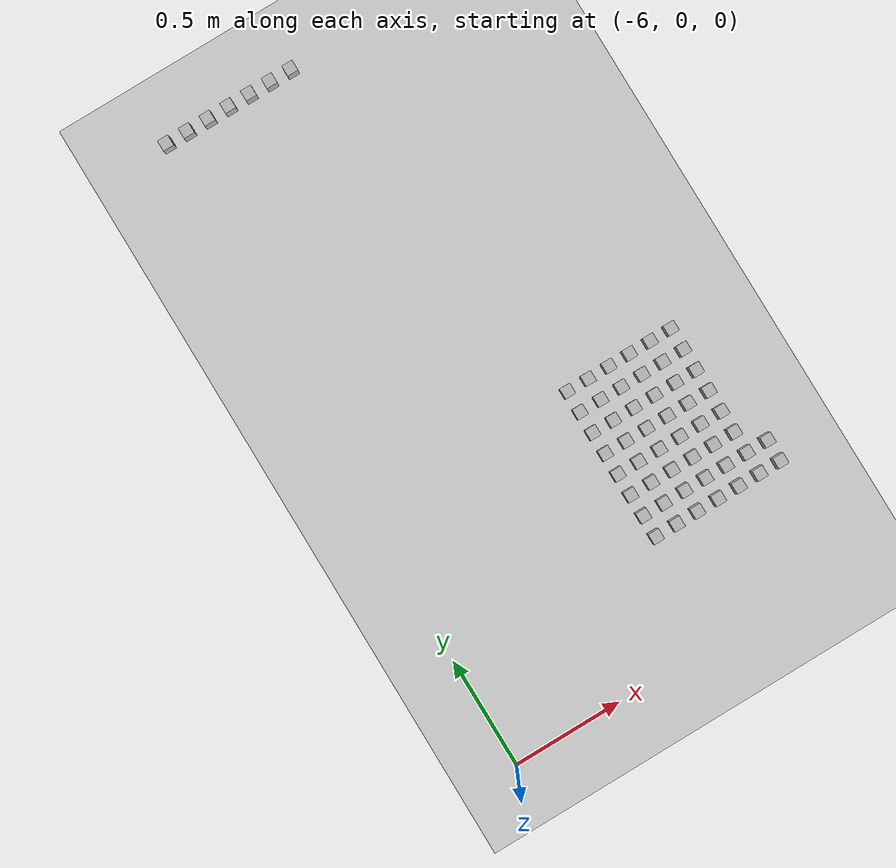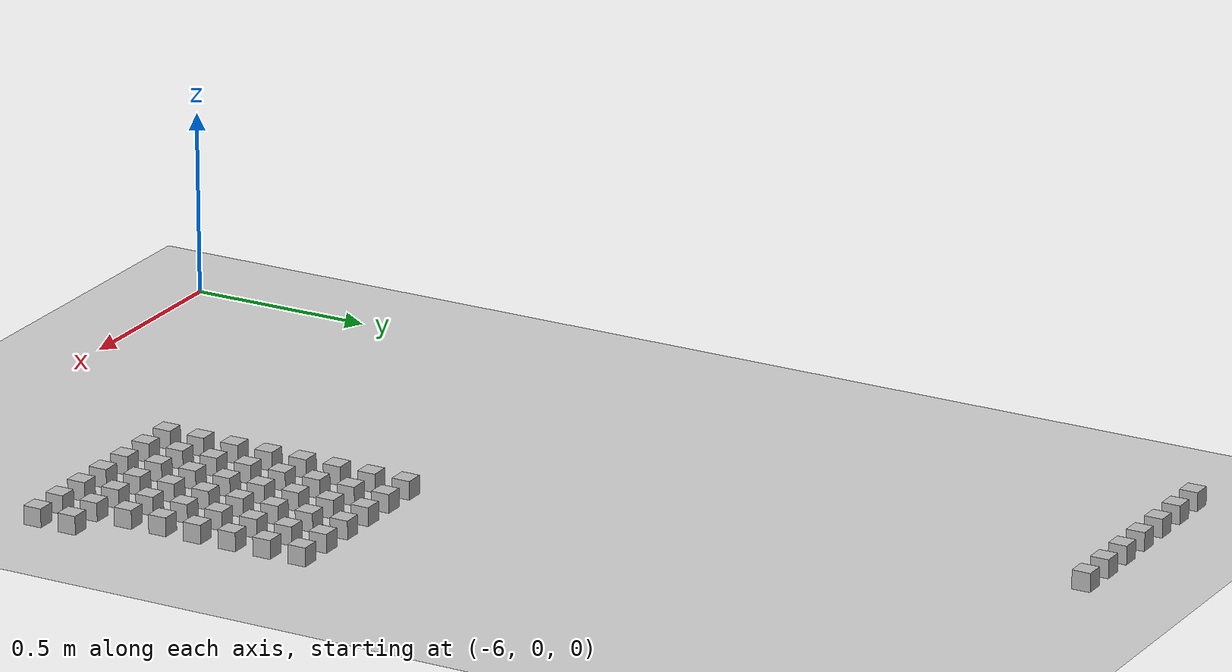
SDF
<sdf version="1.6">
 <world name="default">
  <model name="ground_plane">
   <static>1</static>
   <link name="link">
    <collision name="collision">
     <geometry><plane><normal>0 0 1</normal><size>100 100</size></plane></geometry>
     <surface><friction><ode><mu>100</mu><mu2>50</mu2></ode></friction></surface>
    </collision>
    <visual name="visual">
     <cast_shadows>0</cast_shadows>
     <geometry><plane><normal>0 0 1</normal><size>100 100</size></plane></geometry>
     <material>
      <script><uri>file://media/materials/scripts/gazebo.material</uri><name>Gazebo/Grey</name></script>
     </material>
    </visual>
   </link>
  </model>
  <model name="at0">
   <static>0</static>
   <link name="link">
    <inertial>
     <mass>0.01</mass>
     <inertia><ixx>4e-05</ixx><ixy>0</ixy><ixz>0</ixz><iyy>4e-05</iyy><iyz>0</iyz><izz>4e-05</izz></inertia>
    </inertial>
    <visual name="visual">
     <geometry><box><size>0.05 0.05 0.05</size></box></geometry>
     <material>
      <script>
       <uri>model://at0/materials/scripts</uri>
       <uri>model://at0/materials/textures</uri>
       <name>at0/Diffuse</name>
      </script>
     </material>
    </visual>
    <collision name="collision">
     <geometry><box><size>0.05 0.05 0.05</size></box></geometry>
     <surface><friction><ode><mu>0.8</mu><mu2>0.7</mu2></ode></friction></surface>
    </collision>
   </link>
   <pose>-5.01833 0.509652 0.025 0 -0 0</pose>
  </model>
  <model name="at1">
   <static>0</static>
   <link name="link">
    <inertial>
     <mass>0.01</mass>
     <inertia><ixx>4e-05</ixx><ixy>0</ixy><ixz>0</ixz><iyy>4e-05</iyy><iyz>0</iyz><izz>4e-05</izz></inertia>
    </inertial>
    <visual name="visual">
     <geometry><box><size>0.05 0.05 0.05</size></box></geometry>
     <material>
      <script>
       <uri>model://at0/materials/scripts</uri>
       <uri>model://at0/materials/textures</uri>
       <name>at0/Diffuse</name>
      </script>
     </material>
    </visual>
    <collision name="collision">
     <geometry><box><size>0.05 0.05 0.05</size></box></geometry>
     <surface><friction><ode><mu>0.8</mu><mu2>0.7</mu2></ode></friction></surface>
    </collision>
   </link>
   <pose>-4.91833 0.509652 0.025 0 -0 0</pose>
  </model>
  <model name="at2">
   <static>0</static>
   <link name="link">
    <inertial>
     <mass>0.01</mass>
     <inertia><ixx>4e-05</ixx><ixy>0</ixy><ixz>0</ixz><iyy>4e-05</iyy><iyz>0</iyz><izz>4e-05</izz></inertia>
    </inertial>
    <visual name="visual">
     <geometry><box><size>0.05 0.05 0.05</size></box></geometry>
     <material>
      <script>
       <uri>model://at0/materials/scripts</uri>
       <uri>model://at0/materials/textures</uri>
       <name>at0/Diffuse</name>
      </script>
     </material>
    </visual>
    <collision name="collision">
     <geometry><box><size>0.05 0.05 0.05</size></box></geometry>
     <surface><friction><ode><mu>0.8</mu><mu2>0.7</mu2></ode></friction></surface>
    </collision>
   </link>
   <pose>-4.81833 0.509652 0.025 0 -0 0</pose>
  </model>
  <model name="at3">
   <static>0</static>
   <link name="link">
    <inertial>
     <mass>0.01</mass>
     <inertia><ixx>4e-05</ixx><ixy>0</ixy><ixz>0</ixz><iyy>4e-05</iyy><iyz>0</iyz><izz>4e-05</izz></inertia>
    </inertial>
    <visual name="visual">
     <geometry><box><size>0.05 0.05 0.05</size></box></geometry>
     <material>
      <script>
       <uri>model://at0/materials/scripts</uri>
       <uri>model://at0/materials/textures</uri>
       <name>at0/Diffuse</name>
      </script>
     </material>
    </visual>
    <collision name="collision">
     <geometry><box><size>0.05 0.05 0.05</size></box></geometry>
     <surface><friction><ode><mu>0.8</mu><mu2>0.7</mu2></ode></friction></surface>
    </collision>
   </link>
   <pose>-4.71833 0.509652 0.025 0 -0 0</pose>
  </model>
  <model name="at4">
   <static>0</static>
   <link name="link">
    <inertial>
     <mass>0.01</mass>
     <inertia><ixx>4e-05</ixx><ixy>0</ixy><ixz>0</ixz><iyy>4e-05</iyy><iyz>0</iyz><izz>4e-05</izz></inertia>
    </inertial>
    <visual name="visual">
     <geometry><box><size>0.05 0.05 0.05</size></box></geometry>
     <material>
      <script>
       <uri>model://at0/materials/scripts</uri>
       <uri>model://at0/materials/textures</uri>
       <name>at0/Diffuse</name>
      </script>
     </material>
    </visual>
    <collision name="collision">
     <geometry><box><size>0.05 0.05 0.05</size></box></geometry>
     <surface><friction><ode><mu>0.8</mu><mu2>0.7</mu2></ode></friction></surface>
    </collision>
   </link>
   <pose>-4.61833 0.509652 0.025 0 -0 0</pose>
  </model>
  <model name="at5">
   <static>0</static>
   <link name="link">
    <inertial>
     <mass>0.01</mass>
     <inertia><ixx>4e-05</ixx><ixy>0</ixy><ixz>0</ixz><iyy>4e-05</iyy><iyz>0</iyz><izz>4e-05</izz></inertia>
    </inertial>
    <visual name="visual">
     <geometry><box><size>0.05 0.05 0.05</size></box></geometry>
     <material>
      <script>
       <uri>model://at0/materials/scripts</uri>
       <uri>model://at0/materials/textures</uri>
       <name>at0/Diffuse</name>
      </script>
     </material>
    </visual>
    <collision name="collision">
     <geometry><box><size>0.05 0.05 0.05</size></box></geometry>
     <surface><friction><ode><mu>0.8</mu><mu2>0.7</mu2></ode></friction></surface>
    </collision>
   </link>
   <pose>-4.51833 0.509652 0.025 0 -0 0</pose>
  </model>
  <model name="at6">
   <static>0</static>
   <link name="link">
    <inertial>
     <mass>0.01</mass>
     <inertia><ixx>4e-05</ixx><ixy>0</ixy><ixz>0</ixz><iyy>4e-05</iyy><iyz>0</iyz><izz>4e-05</izz></inertia>
    </inertial>
    <visual name="visual">
     <geometry><box><size>0.05 0.05 0.05</size></box></geometry>
     <material>
      <script>
       <uri>model://at0/materials/scripts</uri>
       <uri>model://at0/materials/textures</uri>
       <name>at0/Diffuse</name>
      </script>
     </material>
    </visual>
    <collision name="collision">
     <geometry><box><size>0.05 0.05 0.05</size></box></geometry>
     <surface><friction><ode><mu>0.8</mu><mu2>0.7</mu2></ode></friction></surface>
    </collision>
   </link>
   <pose>-4.41833 0.509652 0.025 0 -0 0</pose>
  </model>
  <model name="at8">
   <static>0</static>
   <link name="link">
    <inertial>
     <mass>0.01</mass>
     <inertia><ixx>4e-05</ixx><ixy>0</ixy><ixz>0</ixz><iyy>4e-05</iyy><iyz>0</iyz><izz>4e-05</izz></inertia>
    </inertial>
    <visual name="visual">
     <geometry><box><size>0.05 0.05 0.05</size></box></geometry>
     <material>
      <script>
       <uri>model://at0/materials/scripts</uri>
       <uri>model://at0/materials/textures</uri>
       <name>at0/Diffuse</name>
      </script>
     </material>
    </visual>
    <collision name="collision">
     <geometry><box><size>0.05 0.05 0.05</size></box></geometry>
     <surface><friction><ode><mu>0.8</mu><mu2>0.7</mu2></ode></friction></surface>
    </collision>
   </link>
   <pose>-5.01833 0.609652 0.025 0 -0 0</pose>
  </model>
  <model name="at9">
   <static>0</static>
   <link name="link">
    <inertial>
     <mass>0.01</mass>
     <inertia><ixx>4e-05</ixx><ixy>0</ixy><ixz>0</ixz><iyy>4e-05</iyy><iyz>0</iyz><izz>4e-05</izz></inertia>
    </inertial>
    <visual name="visual">
     <geometry><box><size>0.05 0.05 0.05</size></box></geometry>
     <material>
      <script>
       <uri>model://at0/materials/scripts</uri>
       <uri>model://at0/materials/textures</uri>
       <name>at0/Diffuse</name>
      </script>
     </material>
    </visual>
    <collision name="collision">
     <geometry><box><size>0.05 0.05 0.05</size></box></geometry>
     <surface><friction><ode><mu>0.8</mu><mu2>0.7</mu2></ode></friction></surface>
    </collision>
   </link>
   <pose>-4.91833 0.609652 0.025 0 -0 0</pose>
  </model>
  <model name="at10">
   <static>0</static>
   <link name="link">
    <inertial>
     <mass>0.01</mass>
     <inertia><ixx>4e-05</ixx><ixy>0</ixy><ixz>0</ixz><iyy>4e-05</iyy><iyz>0</iyz><izz>4e-05</izz></inertia>
    </inertial>
    <visual name="visual">
     <geometry><box><size>0.05 0.05 0.05</size></box></geometry>
     <material>
      <script>
       <uri>model://at0/materials/scripts</uri>
       <uri>model://at0/materials/textures</uri>
       <name>at0/Diffuse</name>
      </script>
     </material>
    </visual>
    <collision name="collision">
     <geometry><box><size>0.05 0.05 0.05</size></box></geometry>
     <surface><friction><ode><mu>0.8</mu><mu2>0.7</mu2></ode></friction></surface>
    </collision>
   </link>
   <pose>-4.81833 0.609652 0.025 0 -0 0</pose>
  </model>
  <model name="at11">
   <static>0</static>
   <link name="link">
    <inertial>
     <mass>0.01</mass>
     <inertia><ixx>4e-05</ixx><ixy>0</ixy><ixz>0</ixz><iyy>4e-05</iyy><iyz>0</iyz><izz>4e-05</izz></inertia>
    </inertial>
    <visual name="visual">
     <geometry><box><size>0.05 0.05 0.05</size></box></geometry>
     <material>
      <script>
       <uri>model://at0/materials/scripts</uri>
       <uri>model://at0/materials/textures</uri>
       <name>at0/Diffuse</name>
      </script>
     </material>
    </visual>
    <collision name="collision">
     <geometry><box><size>0.05 0.05 0.05</size></box></geometry>
     <surface><friction><ode><mu>0.8</mu><mu2>0.7</mu2></ode></friction></surface>
    </collision>
   </link>
   <pose>-4.71833 0.609652 0.025 0 -0 0</pose>
  </model>
  <model name="at12">
   <static>0</static>
   <link name="link">
    <inertial>
     <mass>0.01</mass>
     <inertia><ixx>4e-05</ixx><ixy>0</ixy><ixz>0</ixz><iyy>4e-05</iyy><iyz>0</iyz><izz>4e-05</izz></inertia>
    </inertial>
    <visual name="visual">
     <geometry><box><size>0.05 0.05 0.05</size></box></geometry>
     <material>
      <script>
       <uri>model://at0/materials/scripts</uri>
       <uri>model://at0/materials/textures</uri>
       <name>at0/Diffuse</name>
      </script>
     </material>
    </visual>
    <collision name="collision">
     <geometry><box><size>0.05 0.05 0.05</size></box></geometry>
     <surface><friction><ode><mu>0.8</mu><mu2>0.7</mu2></ode></friction></surface>
    </collision>
   </link>
   <pose>-4.61833 0.609652 0.025 0 -0 0</pose>
  </model>
  <model name="at13">
   <static>0</static>
   <link name="link">
    <inertial>
     <mass>0.01</mass>
     <inertia><ixx>4e-05</ixx><ixy>0</ixy><ixz>0</ixz><iyy>4e-05</iyy><iyz>0</iyz><izz>4e-05</izz></inertia>
    </inertial>
    <visual name="visual">
     <geometry><box><size>0.05 0.05 0.05</size></box></geometry>
     <material>
      <script>
       <uri>model://at0/materials/scripts</uri>
       <uri>model://at0/materials/textures</uri>
       <name>at0/Diffuse</name>
      </script>
     </material>
    </visual>
    <collision name="collision">
     <geometry><box><size>0.05 0.05 0.05</size></box></geometry>
     <surface><friction><ode><mu>0.8</mu><mu2>0.7</mu2></ode></friction></surface>
    </collision>
   </link>
   <pose>-4.51833 0.609652 0.025 0 -0 0</pose>
  </model>
  <model name="at14">
   <static>0</static>
   <link name="link">
    <inertial>
     <mass>0.01</mass>
     <inertia><ixx>4e-05</ixx><ixy>0</ixy><ixz>0</ixz><iyy>4e-05</iyy><iyz>0</iyz><izz>4e-05</izz></inertia>
    </inertial>
    <visual name="visual">
     <geometry><box><size>0.05 0.05 0.05</size></box></geometry>
     <material>
      <script>
       <uri>model://at0/materials/scripts</uri>
       <uri>model://at0/materials/textures</uri>
       <name>at0/Diffuse</name>
      </script>
     </material>
    </visual>
    <collision name="collision">
     <geometry><box><size>0.05 0.05 0.05</size></box></geometry>
     <surface><friction><ode><mu>0.8</mu><mu2>0.7</mu2></ode></friction></surface>
    </collision>
   </link>
   <pose>-4.41833 0.609652 0.025 0 -0 0</pose>
  </model>
  <model name="at16">
   <static>0</static>
   <link name="link">
    <inertial>
     <mass>0.01</mass>
     <inertia><ixx>4e-05</ixx><ixy>0</ixy><ixz>0</ixz><iyy>4e-05</iyy><iyz>0</iyz><izz>4e-05</izz></inertia>
    </inertial>
    <visual name="visual">
     <geometry><box><size>0.05 0.05 0.05</size></box></geometry>
     <material>
      <script>
       <uri>model://at0/materials/scripts</uri>
       <uri>model://at0/materials/textures</uri>
       <name>at0/Diffuse</name>
      </script>
     </material>
    </visual>
    <collision name="collision">
     <geometry><box><size>0.05 0.05 0.05</size></box></geometry>
     <surface><friction><ode><mu>0.8</mu><mu2>0.7</mu2></ode></friction></surface>
    </collision>
   </link>
   <pose>-5.01833 0.709652 0.025 0 -0 0</pose>
  </model>
  <model name="at17">
   <static>0</static>
   <link name="link">
    <inertial>
     <mass>0.01</mass>
     <inertia><ixx>4e-05</ixx><ixy>0</ixy><ixz>0</ixz><iyy>4e-05</iyy><iyz>0</iyz><izz>4e-05</izz></inertia>
    </inertial>
    <visual name="visual">
     <geometry><box><size>0.05 0.05 0.05</size></box></geometry>
     <material>
      <script>
       <uri>model://at0/materials/scripts</uri>
       <uri>model://at0/materials/textures</uri>
       <name>at0/Diffuse</name>
      </script>
     </material>
    </visual>
    <collision name="collision">
     <geometry><box><size>0.05 0.05 0.05</size></box></geometry>
     <surface><friction><ode><mu>0.8</mu><mu2>0.7</mu2></ode></friction></surface>
    </collision>
   </link>
   <pose>-4.91833 0.709652 0.025 0 -0 0</pose>
  </model>
  <model name="at18">
   <static>0</static>
   <link name="link">
    <inertial>
     <mass>0.01</mass>
     <inertia><ixx>4e-05</ixx><ixy>0</ixy><ixz>0</ixz><iyy>4e-05</iyy><iyz>0</iyz><izz>4e-05</izz></inertia>
    </inertial>
    <visual name="visual">
     <geometry><box><size>0.05 0.05 0.05</size></box></geometry>
     <material>
      <script>
       <uri>model://at0/materials/scripts</uri>
       <uri>model://at0/materials/textures</uri>
       <name>at0/Diffuse</name>
      </script>
     </material>
    </visual>
    <collision name="collision">
     <geometry><box><size>0.05 0.05 0.05</size></box></geometry>
     <surface><friction><ode><mu>0.8</mu><mu2>0.7</mu2></ode></friction></surface>
    </collision>
   </link>
   <pose>-4.81833 0.709652 0.025 0 -0 0</pose>
  </model>
  <model name="at19">
   <static>0</static>
   <link name="link">
    <inertial>
     <mass>0.01</mass>
     <inertia><ixx>4e-05</ixx><ixy>0</ixy><ixz>0</ixz><iyy>4e-05</iyy><iyz>0</iyz><izz>4e-05</izz></inertia>
    </inertial>
    <visual name="visual">
     <geometry><box><size>0.05 0.05 0.05</size></box></geometry>
     <material>
      <script>
       <uri>model://at0/materials/scripts</uri>
       <uri>model://at0/materials/textures</uri>
       <name>at0/Diffuse</name>
      </script>
     </material>
    </visual>
    <collision name="collision">
     <geometry><box><size>0.05 0.05 0.05</size></box></geometry>
     <surface><friction><ode><mu>0.8</mu><mu2>0.7</mu2></ode></friction></surface>
    </collision>
   </link>
   <pose>-4.71833 0.709652 0.025 0 -0 0</pose>
  </model>
  <model name="at20">
   <static>0</static>
   <link name="link">
    <inertial>
     <mass>0.01</mass>
     <inertia><ixx>4e-05</ixx><ixy>0</ixy><ixz>0</ixz><iyy>4e-05</iyy><iyz>0</iyz><izz>4e-05</izz></inertia>
    </inertial>
    <visual name="visual">
     <geometry><box><size>0.05 0.05 0.05</size></box></geometry>
     <material>
      <script>
       <uri>model://at0/materials/scripts</uri>
       <uri>model://at0/materials/textures</uri>
       <name>at0/Diffuse</name>
      </script>
     </material>
    </visual>
    <collision name="collision">
     <geometry><box><size>0.05 0.05 0.05</size></box></geometry>
     <surface><friction><ode><mu>0.8</mu><mu2>0.7</mu2></ode></friction></surface>
    </collision>
   </link>
   <pose>-4.61833 0.709652 0.025 0 -0 0</pose>
  </model>
  <model name="at21">
   <static>0</static>
   <link name="link">
    <inertial>
     <mass>0.01</mass>
     <inertia><ixx>4e-05</ixx><ixy>0</ixy><ixz>0</ixz><iyy>4e-05</iyy><iyz>0</iyz><izz>4e-05</izz></inertia>
    </inertial>
    <visual name="visual">
     <geometry><box><size>0.05 0.05 0.05</size></box></geometry>
     <material>
      <script>
       <uri>model://at0/materials/scripts</uri>
       <uri>model://at0/materials/textures</uri>
       <name>at0/Diffuse</name>
      </script>
     </material>
    </visual>
    <collision name="collision">
     <geometry><box><size>0.05 0.05 0.05</size></box></geometry>
     <surface><friction><ode><mu>0.8</mu><mu2>0.7</mu2></ode></friction></surface>
    </collision>
   </link>
   <pose>-4.51833 0.709652 0.025 0 -0 0</pose>
  </model>
  <model name="at24">
   <static>0</static>
   <link name="link">
    <inertial>
     <mass>0.01</mass>
     <inertia><ixx>4e-05</ixx><ixy>0</ixy><ixz>0</ixz><iyy>4e-05</iyy><iyz>0</iyz><izz>4e-05</izz></inertia>
    </inertial>
    <visual name="visual">
     <geometry><box><size>0.05 0.05 0.05</size></box></geometry>
     <material>
      <script>
       <uri>model://at0/materials/scripts</uri>
       <uri>model://at0/materials/textures</uri>
       <name>at0/Diffuse</name>
      </script>
     </material>
    </visual>
    <collision name="collision">
     <geometry><box><size>0.05 0.05 0.05</size></box></geometry>
     <surface><friction><ode><mu>0.8</mu><mu2>0.7</mu2></ode></friction></surface>
    </collision>
   </link>
   <pose>-5.01833 0.809652 0.025 0 -0 0</pose>
  </model>
  <model name="at25">
   <static>0</static>
   <link name="link">
    <inertial>
     <mass>0.01</mass>
     <inertia><ixx>4e-05</ixx><ixy>0</ixy><ixz>0</ixz><iyy>4e-05</iyy><iyz>0</iyz><izz>4e-05</izz></inertia>
    </inertial>
    <visual name="visual">
     <geometry><box><size>0.05 0.05 0.05</size></box></geometry>
     <material>
      <script>
       <uri>model://at0/materials/scripts</uri>
       <uri>model://at0/materials/textures</uri>
       <name>at0/Diffuse</name>
      </script>
     </material>
    </visual>
    <collision name="collision">
     <geometry><box><size>0.05 0.05 0.05</size></box></geometry>
     <surface><friction><ode><mu>0.8</mu><mu2>0.7</mu2></ode></friction></surface>
    </collision>
   </link>
   <pose>-4.91833 0.809652 0.025 0 -0 0</pose>
  </model>
  <model name="at26">
   <static>0</static>
   <link name="link">
    <inertial>
     <mass>0.01</mass>
     <inertia><ixx>4e-05</ixx><ixy>0</ixy><ixz>0</ixz><iyy>4e-05</iyy><iyz>0</iyz><izz>4e-05</izz></inertia>
    </inertial>
    <visual name="visual">
     <geometry><box><size>0.05 0.05 0.05</size></box></geometry>
     <material>
      <script>
       <uri>model://at0/materials/scripts</uri>
       <uri>model://at0/materials/textures</uri>
       <name>at0/Diffuse</name>
      </script>
     </material>
    </visual>
    <collision name="collision">
     <geometry><box><size>0.05 0.05 0.05</size></box></geometry>
     <surface><friction><ode><mu>0.8</mu><mu2>0.7</mu2></ode></friction></surface>
    </collision>
   </link>
   <pose>-4.81833 0.809652 0.025 0 -0 0</pose>
  </model>
  <model name="at27">
   <static>0</static>
   <link name="link">
    <inertial>
     <mass>0.01</mass>
     <inertia><ixx>4e-05</ixx><ixy>0</ixy><ixz>0</ixz><iyy>4e-05</iyy><iyz>0</iyz><izz>4e-05</izz></inertia>
    </inertial>
    <visual name="visual">
     <geometry><box><size>0.05 0.05 0.05</size></box></geometry>
     <material>
      <script>
       <uri>model://at0/materials/scripts</uri>
       <uri>model://at0/materials/textures</uri>
       <name>at0/Diffuse</name>
      </script>
     </material>
    </visual>
    <collision name="collision">
     <geometry><box><size>0.05 0.05 0.05</size></box></geometry>
     <surface><friction><ode><mu>0.8</mu><mu2>0.7</mu2></ode></friction></surface>
    </collision>
   </link>
   <pose>-4.71833 0.809652 0.025 0 -0 0</pose>
  </model>
  <model name="at28">
   <static>0</static>
   <link name="link">
    <inertial>
     <mass>0.01</mass>
     <inertia><ixx>4e-05</ixx><ixy>0</ixy><ixz>0</ixz><iyy>4e-05</iyy><iyz>0</iyz><izz>4e-05</izz></inertia>
    </inertial>
    <visual name="visual">
     <geometry><box><size>0.05 0.05 0.05</size></box></geometry>
     <material>
      <script>
       <uri>model://at0/materials/scripts</uri>
       <uri>model://at0/materials/textures</uri>
       <name>at0/Diffuse</name>
      </script>
     </material>
    </visual>
    <collision name="collision">
     <geometry><box><size>0.05 0.05 0.05</size></box></geometry>
     <surface><friction><ode><mu>0.8</mu><mu2>0.7</mu2></ode></friction></surface>
    </collision>
   </link>
   <pose>-4.61833 0.809652 0.025 0 -0 0</pose>
  </model>
  <model name="at29">
   <static>0</static>
   <link name="link">
    <inertial>
     <mass>0.01</mass>
     <inertia><ixx>4e-05</ixx><ixy>0</ixy><ixz>0</ixz><iyy>4e-05</iyy><iyz>0</iyz><izz>4e-05</izz></inertia>
    </inertial>
    <visual name="visual">
     <geometry><box><size>0.05 0.05 0.05</size></box></geometry>
     <material>
      <script>
       <uri>model://at0/materials/scripts</uri>
       <uri>model://at0/materials/textures</uri>
       <name>at0/Diffuse</name>
      </script>
     </material>
    </visual>
    <collision name="collision">
     <geometry><box><size>0.05 0.05 0.05</size></box></geometry>
     <surface><friction><ode><mu>0.8</mu><mu2>0.7</mu2></ode></friction></surface>
    </collision>
   </link>
   <pose>-4.51833 0.809652 0.025 0 -0 0</pose>
  </model>
  <model name="at32">
   <static>0</static>
   <link name="link">
    <inertial>
     <mass>0.01</mass>
     <inertia><ixx>4e-05</ixx><ixy>0</ixy><ixz>0</ixz><iyy>4e-05</iyy><iyz>0</iyz><izz>4e-05</izz></inertia>
    </inertial>
    <visual name="visual">
     <geometry><box><size>0.05 0.05 0.05</size></box></geometry>
     <material>
      <script>
       <uri>model://at0/materials/scripts</uri>
       <uri>model://at0/materials/textures</uri>
       <name>at0/Diffuse</name>
      </script>
     </material>
    </visual>
    <collision name="collision">
     <geometry><box><size>0.05 0.05 0.05</size></box></geometry>
     <surface><friction><ode><mu>0.8</mu><mu2>0.7</mu2></ode></friction></surface>
    </collision>
   </link>
   <pose>-5.01833 0.909652 0.025 0 -0 0</pose>
  </model>
  <model name="at33">
   <static>0</static>
   <link name="link">
    <inertial>
     <mass>0.01</mass>
     <inertia><ixx>4e-05</ixx><ixy>0</ixy><ixz>0</ixz><iyy>4e-05</iyy><iyz>0</iyz><izz>4e-05</izz></inertia>
    </inertial>
    <visual name="visual">
     <geometry><box><size>0.05 0.05 0.05</size></box></geometry>
     <material>
      <script>
       <uri>model://at0/materials/scripts</uri>
       <uri>model://at0/materials/textures</uri>
       <name>at0/Diffuse</name>
      </script>
     </material>
    </visual>
    <collision name="collision">
     <geometry><box><size>0.05 0.05 0.05</size></box></geometry>
     <surface><friction><ode><mu>0.8</mu><mu2>0.7</mu2></ode></friction></surface>
    </collision>
   </link>
   <pose>-4.91833 0.909652 0.025 0 -0 0</pose>
  </model>
  <model name="at34">
   <static>0</static>
   <link name="link">
    <inertial>
     <mass>0.01</mass>
     <inertia><ixx>4e-05</ixx><ixy>0</ixy><ixz>0</ixz><iyy>4e-05</iyy><iyz>0</iyz><izz>4e-05</izz></inertia>
    </inertial>
    <visual name="visual">
     <geometry><box><size>0.05 0.05 0.05</size></box></geometry>
     <material>
      <script>
       <uri>model://at0/materials/scripts</uri>
       <uri>model://at0/materials/textures</uri>
       <name>at0/Diffuse</name>
      </script>
     </material>
    </visual>
    <collision name="collision">
     <geometry><box><size>0.05 0.05 0.05</size></box></geometry>
     <surface><friction><ode><mu>0.8</mu><mu2>0.7</mu2></ode></friction></surface>
    </collision>
   </link>
   <pose>-4.81833 0.909652 0.025 0 -0 0</pose>
  </model>
  <model name="at35">
   <static>0</static>
   <link name="link">
    <inertial>
     <mass>0.01</mass>
     <inertia><ixx>4e-05</ixx><ixy>0</ixy><ixz>0</ixz><iyy>4e-05</iyy><iyz>0</iyz><izz>4e-05</izz></inertia>
    </inertial>
    <visual name="visual">
     <geometry><box><size>0.05 0.05 0.05</size></box></geometry>
     <material>
      <script>
       <uri>model://at0/materials/scripts</uri>
       <uri>model://at0/materials/textures</uri>
       <name>at0/Diffuse</name>
      </script>
     </material>
    </visual>
    <collision name="collision">
     <geometry><box><size>0.05 0.05 0.05</size></box></geometry>
     <surface><friction><ode><mu>0.8</mu><mu2>0.7</mu2></ode></friction></surface>
    </collision>
   </link>
   <pose>-4.71833 0.909652 0.025 0 -0 0</pose>
  </model>
  <model name="at36">
   <static>0</static>
   <link name="link">
    <inertial>
     <mass>0.01</mass>
     <inertia><ixx>4e-05</ixx><ixy>0</ixy><ixz>0</ixz><iyy>4e-05</iyy><iyz>0</iyz><izz>4e-05</izz></inertia>
    </inertial>
    <visual name="visual">
     <geometry><box><size>0.05 0.05 0.05</size></box></geometry>
     <material>
      <script>
       <uri>model://at0/materials/scripts</uri>
       <uri>model://at0/materials/textures</uri>
       <name>at0/Diffuse</name>
      </script>
     </material>
    </visual>
    <collision name="collision">
     <geometry><box><size>0.05 0.05 0.05</size></box></geometry>
     <surface><friction><ode><mu>0.8</mu><mu2>0.7</mu2></ode></friction></surface>
    </collision>
   </link>
   <pose>-4.61833 0.909652 0.025 0 -0 0</pose>
  </model>
  <model name="at37">
   <static>0</static>
   <link name="link">
    <inertial>
     <mass>0.01</mass>
     <inertia><ixx>4e-05</ixx><ixy>0</ixy><ixz>0</ixz><iyy>4e-05</iyy><iyz>0</iyz><izz>4e-05</izz></inertia>
    </inertial>
    <visual name="visual">
     <geometry><box><size>0.05 0.05 0.05</size></box></geometry>
     <material>
      <script>
       <uri>model://at0/materials/scripts</uri>
       <uri>model://at0/materials/textures</uri>
       <name>at0/Diffuse</name>
      </script>
     </material>
    </visual>
    <collision name="collision">
     <geometry><box><size>0.05 0.05 0.05</size></box></geometry>
     <surface><friction><ode><mu>0.8</mu><mu2>0.7</mu2></ode></friction></surface>
    </collision>
   </link>
   <pose>-4.51833 0.909652 0.025 0 -0 0</pose>
  </model>
  <model name="at40">
   <static>0</static>
   <link name="link">
    <inertial>
     <mass>0.01</mass>
     <inertia><ixx>4e-05</ixx><ixy>0</ixy><ixz>0</ixz><iyy>4e-05</iyy><iyz>0</iyz><izz>4e-05</izz></inertia>
    </inertial>
    <visual name="visual">
     <geometry><box><size>0.05 0.05 0.05</size></box></geometry>
     <material>
      <script>
       <uri>model://at0/materials/scripts</uri>
       <uri>model://at0/materials/textures</uri>
       <name>at0/Diffuse</name>
      </script>
     </material>
    </visual>
    <collision name="collision">
     <geometry><box><size>0.05 0.05 0.05</size></box></geometry>
     <surface><friction><ode><mu>0.8</mu><mu2>0.7</mu2></ode></friction></surface>
    </collision>
   </link>
   <pose>-5.01833 1.00965 0.025 0 -0 0</pose>
  </model>
  <model name="at41">
   <static>0</static>
   <link name="link">
    <inertial>
     <mass>0.01</mass>
     <inertia><ixx>4e-05</ixx><ixy>0</ixy><ixz>0</ixz><iyy>4e-05</iyy><iyz>0</iyz><izz>4e-05</izz></inertia>
    </inertial>
    <visual name="visual">
     <geometry><box><size>0.05 0.05 0.05</size></box></geometry>
     <material>
      <script>
       <uri>model://at0/materials/scripts</uri>
       <uri>model://at0/materials/textures</uri>
       <name>at0/Diffuse</name>
      </script>
     </material>
    </visual>
    <collision name="collision">
     <geometry><box><size>0.05 0.05 0.05</size></box></geometry>
     <surface><friction><ode><mu>0.8</mu><mu2>0.7</mu2></ode></friction></surface>
    </collision>
   </link>
   <pose>-4.91833 1.00965 0.025 0 -0 0</pose>
  </model>
  <model name="at42">
   <static>0</static>
   <link name="link">
    <inertial>
     <mass>0.01</mass>
     <inertia><ixx>4e-05</ixx><ixy>0</ixy><ixz>0</ixz><iyy>4e-05</iyy><iyz>0</iyz><izz>4e-05</izz></inertia>
    </inertial>
    <visual name="visual">
     <geometry><box><size>0.05 0.05 0.05</size></box></geometry>
     <material>
      <script>
       <uri>model://at0/materials/scripts</uri>
       <uri>model://at0/materials/textures</uri>
       <name>at0/Diffuse</name>
      </script>
     </material>
    </visual>
    <collision name="collision">
     <geometry><box><size>0.05 0.05 0.05</size></box></geometry>
     <surface><friction><ode><mu>0.8</mu><mu2>0.7</mu2></ode></friction></surface>
    </collision>
   </link>
   <pose>-4.81833 1.00965 0.025 0 -0 0</pose>
  </model>
  <model name="at43">
   <static>0</static>
   <link name="link">
    <inertial>
     <mass>0.01</mass>
     <inertia><ixx>4e-05</ixx><ixy>0</ixy><ixz>0</ixz><iyy>4e-05</iyy><iyz>0</iyz><izz>4e-05</izz></inertia>
    </inertial>
    <visual name="visual">
     <geometry><box><size>0.05 0.05 0.05</size></box></geometry>
     <material>
      <script>
       <uri>model://at0/materials/scripts</uri>
       <uri>model://at0/materials/textures</uri>
       <name>at0/Diffuse</name>
      </script>
     </material>
    </visual>
    <collision name="collision">
     <geometry><box><size>0.05 0.05 0.05</size></box></geometry>
     <surface><friction><ode><mu>0.8</mu><mu2>0.7</mu2></ode></friction></surface>
    </collision>
   </link>
   <pose>-4.71833 1.00965 0.025 0 -0 0</pose>
  </model>
  <model name="at44">
   <static>0</static>
   <link name="link">
    <inertial>
     <mass>0.01</mass>
     <inertia><ixx>4e-05</ixx><ixy>0</ixy><ixz>0</ixz><iyy>4e-05</iyy><iyz>0</iyz><izz>4e-05</izz></inertia>
    </inertial>
    <visual name="visual">
     <geometry><box><size>0.05 0.05 0.05</size></box></geometry>
     <material>
      <script>
       <uri>model://at0/materials/scripts</uri>
       <uri>model://at0/materials/textures</uri>
       <name>at0/Diffuse</name>
      </script>
     </material>
    </visual>
    <collision name="collision">
     <geometry><box><size>0.05 0.05 0.05</size></box></geometry>
     <surface><friction><ode><mu>0.8</mu><mu2>0.7</mu2></ode></friction></surface>
    </collision>
   </link>
   <pose>-4.61833 1.00965 0.025 0 -0 0</pose>
  </model>
  <model name="at45">
   <static>0</static>
   <link name="link">
    <inertial>
     <mass>0.01</mass>
     <inertia><ixx>4e-05</ixx><ixy>0</ixy><ixz>0</ixz><iyy>4e-05</iyy><iyz>0</iyz><izz>4e-05</izz></inertia>
    </inertial>
    <visual name="visual">
     <geometry><box><size>0.05 0.05 0.05</size></box></geometry>
     <material>
      <script>
       <uri>model://at0/materials/scripts</uri>
       <uri>model://at0/materials/textures</uri>
       <name>at0/Diffuse</name>
      </script>
     </material>
    </visual>
    <collision name="collision">
     <geometry><box><size>0.05 0.05 0.05</size></box></geometry>
     <surface><friction><ode><mu>0.8</mu><mu2>0.7</mu2></ode></friction></surface>
    </collision>
   </link>
   <pose>-4.51833 1.00965 0.025 0 -0 0</pose>
  </model>
  <model name="at48">
   <static>0</static>
   <link name="link">
    <inertial>
     <mass>0.01</mass>
     <inertia><ixx>4e-05</ixx><ixy>0</ixy><ixz>0</ixz><iyy>4e-05</iyy><iyz>0</iyz><izz>4e-05</izz></inertia>
    </inertial>
    <visual name="visual">
     <geometry><box><size>0.05 0.05 0.05</size></box></geometry>
     <material>
      <script>
       <uri>model://at0/materials/scripts</uri>
       <uri>model://at0/materials/textures</uri>
       <name>at0/Diffuse</name>
      </script>
     </material>
    </visual>
    <collision name="collision">
     <geometry><box><size>0.05 0.05 0.05</size></box></geometry>
     <surface><friction><ode><mu>0.8</mu><mu2>0.7</mu2></ode></friction></surface>
    </collision>
   </link>
   <pose>-5.01833 1.10965 0.025 0 -0 0</pose>
  </model>
  <model name="at49">
   <static>0</static>
   <link name="link">
    <inertial>
     <mass>0.01</mass>
     <inertia><ixx>4e-05</ixx><ixy>0</ixy><ixz>0</ixz><iyy>4e-05</iyy><iyz>0</iyz><izz>4e-05</izz></inertia>
    </inertial>
    <visual name="visual">
     <geometry><box><size>0.05 0.05 0.05</size></box></geometry>
     <material>
      <script>
       <uri>model://at0/materials/scripts</uri>
       <uri>model://at0/materials/textures</uri>
       <name>at0/Diffuse</name>
      </script>
     </material>
    </visual>
    <collision name="collision">
     <geometry><box><size>0.05 0.05 0.05</size></box></geometry>
     <surface><friction><ode><mu>0.8</mu><mu2>0.7</mu2></ode></friction></surface>
    </collision>
   </link>
   <pose>-4.91833 1.10965 0.025 0 -0 0</pose>
  </model>
  <model name="at50">
   <static>0</static>
   <link name="link">
    <inertial>
     <mass>0.01</mass>
     <inertia><ixx>4e-05</ixx><ixy>0</ixy><ixz>0</ixz><iyy>4e-05</iyy><iyz>0</iyz><izz>4e-05</izz></inertia>
    </inertial>
    <visual name="visual">
     <geometry><box><size>0.05 0.05 0.05</size></box></geometry>
     <material>
      <script>
       <uri>model://at0/materials/scripts</uri>
       <uri>model://at0/materials/textures</uri>
       <name>at0/Diffuse</name>
      </script>
     </material>
    </visual>
    <collision name="collision">
     <geometry><box><size>0.05 0.05 0.05</size></box></geometry>
     <surface><friction><ode><mu>0.8</mu><mu2>0.7</mu2></ode></friction></surface>
    </collision>
   </link>
   <pose>-4.81833 1.10965 0.025 0 -0 0</pose>
  </model>
  <model name="at51">
   <static>0</static>
   <link name="link">
    <inertial>
     <mass>0.01</mass>
     <inertia><ixx>4e-05</ixx><ixy>0</ixy><ixz>0</ixz><iyy>4e-05</iyy><iyz>0</iyz><izz>4e-05</izz></inertia>
    </inertial>
    <visual name="visual">
     <geometry><box><size>0.05 0.05 0.05</size></box></geometry>
     <material>
      <script>
       <uri>model://at0/materials/scripts</uri>
       <uri>model://at0/materials/textures</uri>
       <name>at0/Diffuse</name>
      </script>
     </material>
    </visual>
    <collision name="collision">
     <geometry><box><size>0.05 0.05 0.05</size></box></geometry>
     <surface><friction><ode><mu>0.8</mu><mu2>0.7</mu2></ode></friction></surface>
    </collision>
   </link>
   <pose>-4.71833 1.10965 0.025 0 -0 0</pose>
  </model>
  <model name="at52">
   <static>0</static>
   <link name="link">
    <inertial>
     <mass>0.01</mass>
     <inertia><ixx>4e-05</ixx><ixy>0</ixy><ixz>0</ixz><iyy>4e-05</iyy><iyz>0</iyz><izz>4e-05</izz></inertia>
    </inertial>
    <visual name="visual">
     <geometry><box><size>0.05 0.05 0.05</size></box></geometry>
     <material>
      <script>
       <uri>model://at0/materials/scripts</uri>
       <uri>model://at0/materials/textures</uri>
       <name>at0/Diffuse</name>
      </script>
     </material>
    </visual>
    <collision name="collision">
     <geometry><box><size>0.05 0.05 0.05</size></box></geometry>
     <surface><friction><ode><mu>0.8</mu><mu2>0.7</mu2></ode></friction></surface>
    </collision>
   </link>
   <pose>-4.61833 1.10965 0.025 0 -0 0</pose>
  </model>
  <model name="at53">
   <static>0</static>
   <link name="link">
    <inertial>
     <mass>0.01</mass>
     <inertia><ixx>4e-05</ixx><ixy>0</ixy><ixz>0</ixz><iyy>4e-05</iyy><iyz>0</iyz><izz>4e-05</izz></inertia>
    </inertial>
    <visual name="visual">
     <geometry><box><size>0.05 0.05 0.05</size></box></geometry>
     <material>
      <script>
       <uri>model://at0/materials/scripts</uri>
       <uri>model://at0/materials/textures</uri>
       <name>at0/Diffuse</name>
      </script>
     </material>
    </visual>
    <collision name="collision">
     <geometry><box><size>0.05 0.05 0.05</size></box></geometry>
     <surface><friction><ode><mu>0.8</mu><mu2>0.7</mu2></ode></friction></surface>
    </collision>
   </link>
   <pose>-4.51833 1.10965 0.025 0 -0 0</pose>
  </model>
  <model name="at56">
   <static>0</static>
   <link name="link">
    <inertial>
     <mass>0.01</mass>
     <inertia><ixx>4e-05</ixx><ixy>0</ixy><ixz>0</ixz><iyy>4e-05</iyy><iyz>0</iyz><izz>4e-05</izz></inertia>
    </inertial>
    <visual name="visual">
     <geometry><box><size>0.05 0.05 0.05</size></box></geometry>
     <material>
      <script>
       <uri>model://at0/materials/scripts</uri>
       <uri>model://at0/materials/textures</uri>
       <name>at0/Diffuse</name>
      </script>
     </material>
    </visual>
    <collision name="collision">
     <geometry><box><size>0.05 0.05 0.05</size></box></geometry>
     <surface><friction><ode><mu>0.8</mu><mu2>0.7</mu2></ode></friction></surface>
    </collision>
   </link>
   <pose>-5.01833 1.20965 0.025 0 -0 0</pose>
  </model>
  <model name="at57">
   <static>0</static>
   <link name="link">
    <inertial>
     <mass>0.01</mass>
     <inertia><ixx>4e-05</ixx><ixy>0</ixy><ixz>0</ixz><iyy>4e-05</iyy><iyz>0</iyz><izz>4e-05</izz></inertia>
    </inertial>
    <visual name="visual">
     <geometry><box><size>0.05 0.05 0.05</size></box></geometry>
     <material>
      <script>
       <uri>model://at0/materials/scripts</uri>
       <uri>model://at0/materials/textures</uri>
       <name>at0/Diffuse</name>
      </script>
     </material>
    </visual>
    <collision name="collision">
     <geometry><box><size>0.05 0.05 0.05</size></box></geometry>
     <surface><friction><ode><mu>0.8</mu><mu2>0.7</mu2></ode></friction></surface>
    </collision>
   </link>
   <pose>-4.91833 1.20965 0.025 0 -0 0</pose>
  </model>
  <model name="at58">
   <static>0</static>
   <link name="link">
    <inertial>
     <mass>0.01</mass>
     <inertia><ixx>4e-05</ixx><ixy>0</ixy><ixz>0</ixz><iyy>4e-05</iyy><iyz>0</iyz><izz>4e-05</izz></inertia>
    </inertial>
    <visual name="visual">
     <geometry><box><size>0.05 0.05 0.05</size></box></geometry>
     <material>
      <script>
       <uri>model://at0/materials/scripts</uri>
       <uri>model://at0/materials/textures</uri>
       <name>at0/Diffuse</name>
      </script>
     </material>
    </visual>
    <collision name="collision">
     <geometry><box><size>0.05 0.05 0.05</size></box></geometry>
     <surface><friction><ode><mu>0.8</mu><mu2>0.7</mu2></ode></friction></surface>
    </collision>
   </link>
   <pose>-4.81833 1.20965 0.025 0 -0 0</pose>
  </model>
  <model name="at59">
   <static>0</static>
   <link name="link">
    <inertial>
     <mass>0.01</mass>
     <inertia><ixx>4e-05</ixx><ixy>0</ixy><ixz>0</ixz><iyy>4e-05</iyy><iyz>0</iyz><izz>4e-05</izz></inertia>
    </inertial>
    <visual name="visual">
     <geometry><box><size>0.05 0.05 0.05</size></box></geometry>
     <material>
      <script>
       <uri>model://at0/materials/scripts</uri>
       <uri>model://at0/materials/textures</uri>
       <name>at0/Diffuse</name>
      </script>
     </material>
    </visual>
    <collision name="collision">
     <geometry><box><size>0.05 0.05 0.05</size></box></geometry>
     <surface><friction><ode><mu>0.8</mu><mu2>0.7</mu2></ode></friction></surface>
    </collision>
   </link>
   <pose>-4.71833 1.20965 0.025 0 -0 0</pose>
  </model>
  <model name="at60">
   <static>0</static>
   <link name="link">
    <inertial>
     <mass>0.01</mass>
     <inertia><ixx>4e-05</ixx><ixy>0</ixy><ixz>0</ixz><iyy>4e-05</iyy><iyz>0</iyz><izz>4e-05</izz></inertia>
    </inertial>
    <visual name="visual">
     <geometry><box><size>0.05 0.05 0.05</size></box></geometry>
     <material>
      <script>
       <uri>model://at0/materials/scripts</uri>
       <uri>model://at0/materials/textures</uri>
       <name>at0/Diffuse</name>
      </script>
     </material>
    </visual>
    <collision name="collision">
     <geometry><box><size>0.05 0.05 0.05</size></box></geometry>
     <surface><friction><ode><mu>0.8</mu><mu2>0.7</mu2></ode></friction></surface>
    </collision>
   </link>
   <pose>-4.61833 1.20965 0.025 0 -0 0</pose>
  </model>
  <model name="at61">
   <static>0</static>
   <link name="link">
    <inertial>
     <mass>0.01</mass>
     <inertia><ixx>4e-05</ixx><ixy>0</ixy><ixz>0</ixz><iyy>4e-05</iyy><iyz>0</iyz><izz>4e-05</izz></inertia>
    </inertial>
    <visual name="visual">
     <geometry><box><size>0.05 0.05 0.05</size></box></geometry>
     <material>
      <script>
       <uri>model://at0/materials/scripts</uri>
       <uri>model://at0/materials/textures</uri>
       <name>at0/Diffuse</name>
      </script>
     </material>
    </visual>
    <collision name="collision">
     <geometry><box><size>0.05 0.05 0.05</size></box></geometry>
     <surface><friction><ode><mu>0.8</mu><mu2>0.7</mu2></ode></friction></surface>
    </collision>
   </link>
   <pose>-4.51833 1.20965 0.025 0 -0 0</pose>
  </model>
  <model name="at128">
   <static>0</static>
   <link name="link">
    <inertial>
     <mass>0.01</mass>
     <inertia><ixx>4e-05</ixx><ixy>0</ixy><ixz>0</ixz><iyy>4e-05</iyy><iyz>0</iyz><izz>4e-05</izz></inertia>
    </inertial>
    <visual name="visual">
     <geometry><box><size>0.05 0.05 0.05</size></box></geometry>
     <material>
      <script>
       <uri>model://at0/materials/scripts</uri>
       <uri>model://at0/materials/textures</uri>
       <name>at0/Diffuse</name>
      </script>
     </material>
    </visual>
    <collision name="collision">
     <geometry><box><size>0.05 0.05 0.05</size></box></geometry>
     <surface><friction><ode><mu>0.8</mu><mu2>0.7</mu2></ode></friction></surface>
    </collision>
   </link>
   <pose>-5.90443 2.95036 0.025 0 -0 0</pose>
  </model>
  <model name="at129">
   <static>0</static>
   <link name="link">
    <inertial>
     <mass>0.01</mass>
     <inertia><ixx>4e-05</ixx><ixy>0</ixy><ixz>0</ixz><iyy>4e-05</iyy><iyz>0</iyz><izz>4e-05</izz></inertia>
    </inertial>
    <visual name="visual">
     <geometry><box><size>0.05 0.05 0.05</size></box></geometry>
     <material>
      <script>
       <uri>model://at0/materials/scripts</uri>
       <uri>model://at0/materials/textures</uri>
       <name>at0/Diffuse</name>
      </script>
     </material>
    </visual>
    <collision name="collision">
     <geometry><box><size>0.05 0.05 0.05</size></box></geometry>
     <surface><friction><ode><mu>0.8</mu><mu2>0.7</mu2></ode></friction></surface>
    </collision>
   </link>
   <pose>-5.80443 2.95036 0.025 0 -0 0</pose>
  </model>
  <model name="at130">
   <static>0</static>
   <link name="link">
    <inertial>
     <mass>0.01</mass>
     <inertia><ixx>4e-05</ixx><ixy>0</ixy><ixz>0</ixz><iyy>4e-05</iyy><iyz>0</iyz><izz>4e-05</izz></inertia>
    </inertial>
    <visual name="visual">
     <geometry><box><size>0.05 0.05 0.05</size></box></geometry>
     <material>
      <script>
       <uri>model://at0/materials/scripts</uri>
       <uri>model://at0/materials/textures</uri>
       <name>at0/Diffuse</name>
      </script>
     </material>
    </visual>
    <collision name="collision">
     <geometry><box><size>0.05 0.05 0.05</size></box></geometry>
     <surface><friction><ode><mu>0.8</mu><mu2>0.7</mu2></ode></friction></surface>
    </collision>
   </link>
   <pose>-5.70443 2.95036 0.025 0 -0 0</pose>
  </model>
  <model name="at131">
   <static>0</static>
   <link name="link">
    <inertial>
     <mass>0.01</mass>
     <inertia><ixx>4e-05</ixx><ixy>0</ixy><ixz>0</ixz><iyy>4e-05</iyy><iyz>0</iyz><izz>4e-05</izz></inertia>
    </inertial>
    <visual name="visual">
     <geometry><box><size>0.05 0.05 0.05</size></box></geometry>
     <material>
      <script>
       <uri>model://at0/materials/scripts</uri>
       <uri>model://at0/materials/textures</uri>
       <name>at0/Diffuse</name>
      </script>
     </material>
    </visual>
    <collision name="collision">
     <geometry><box><size>0.05 0.05 0.05</size></box></geometry>
     <surface><friction><ode><mu>0.8</mu><mu2>0.7</mu2></ode></friction></surface>
    </collision>
   </link>
   <pose>-5.60443 2.95036 0.025 0 -0 0</pose>
  </model>
  <model name="at132">
   <static>0</static>
   <link name="link">
    <inertial>
     <mass>0.01</mass>
     <inertia><ixx>4e-05</ixx><ixy>0</ixy><ixz>0</ixz><iyy>4e-05</iyy><iyz>0</iyz><izz>4e-05</izz></inertia>
    </inertial>
    <visual name="visual">
     <geometry><box><size>0.05 0.05 0.05</size></box></geometry>
     <material>
      <script>
       <uri>model://at0/materials/scripts</uri>
       <uri>model://at0/materials/textures</uri>
       <name>at0/Diffuse</name>
      </script>
     </material>
    </visual>
    <collision name="collision">
     <geometry><box><size>0.05 0.05 0.05</size></box></geometry>
     <surface><friction><ode><mu>0.8</mu><mu2>0.7</mu2></ode></friction></surface>
    </collision>
   </link>
   <pose>-5.50443 2.95036 0.025 0 -0 0</pose>
  </model>
  <model name="at133">
   <static>0</static>
   <link name="link">
    <inertial>
     <mass>0.01</mass>
     <inertia><ixx>4e-05</ixx><ixy>0</ixy><ixz>0</ixz><iyy>4e-05</iyy><iyz>0</iyz><izz>4e-05</izz></inertia>
    </inertial>
    <visual name="visual">
     <geometry><box><size>0.05 0.05 0.05</size></box></geometry>
     <material>
      <script>
       <uri>model://at0/materials/scripts</uri>
       <uri>model://at0/materials/textures</uri>
       <name>at0/Diffuse</name>
      </script>
     </material>
    </visual>
    <collision name="collision">
     <geometry><box><size>0.05 0.05 0.05</size></box></geometry>
     <surface><friction><ode><mu>0.8</mu><mu2>0.7</mu2></ode></friction></surface>
    </collision>
   </link>
   <pose>-5.40443 2.95036 0.025 0 -0 0</pose>
  </model>
  <model name="at134">
   <static>0</static>
   <link name="link">
    <inertial>
     <mass>0.01</mass>
     <inertia><ixx>4e-05</ixx><ixy>0</ixy><ixz>0</ixz><iyy>4e-05</iyy><iyz>0</iyz><izz>4e-05</izz></inertia>
    </inertial>
    <visual name="visual">
     <geometry><box><size>0.05 0.05 0.05</size></box></geometry>
     <material>
      <script>
       <uri>model://at0/materials/scripts</uri>
       <uri>model://at0/materials/textures</uri>
       <name>at0/Diffuse</name>
      </script>
     </material>
    </visual>
    <collision name="collision">
     <geometry><box><size>0.05 0.05 0.05</size></box></geometry>
     <surface><friction><ode><mu>0.8</mu><mu2>0.7</mu2></ode></friction></surface>
    </collision>
   </link>
   <pose>-5.30443 2.95036 0.025 0 -0 0</pose>
  </model>
 </world>
</sdf>
